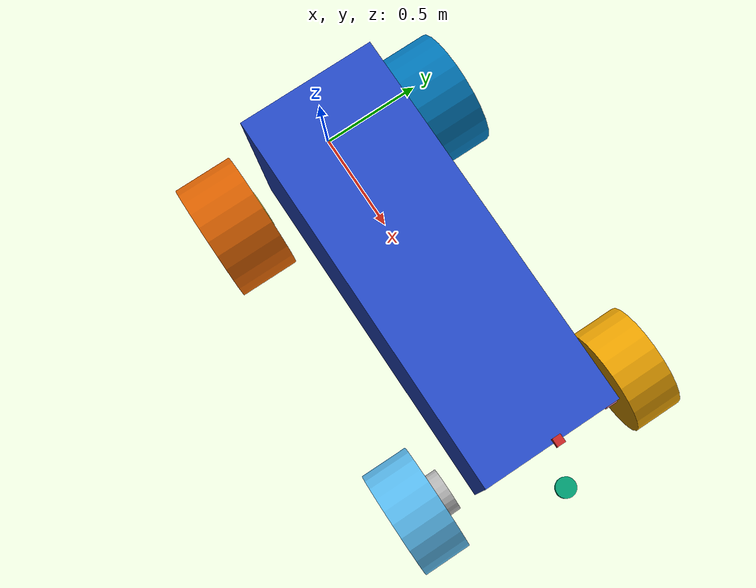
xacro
<?xml version="1.0"?>
<robot xmlns:xacro="http://www.ros.org/wiki/xacro" name="basic_laser_pig">

    <!-- Degree-to-radian conversions -->
    <xacro:property name="degrees_30" value="0.523598776"/>
    <xacro:property name="degrees_45" value="0.785398163"/>
    <xacro:property name="degrees_90" value="1.57079633"/>
    <xacro:property name="degrees_180" value="3.14159265"/>

    <!-- vehiclur velocity properties -->
    <xacro:property name="steering_speed" value="1.0472"/> <!-- units of rad/s -->
    <xacro:property name="steering_max_angle" value="1.0"/> <!-- units of rad, needs to be 30 degreees -->
    <xacro:property name="steering_min_angle" value="-1.0"/> <!-- units of rad, needs to be 30 degrees -->
    <xacro:property name="traverse_max_speed" value="4.785"/> <!-- units of m/s 4.785-->

    <!-- Inertia Generator -->
    <xacro:macro name="default_inertial" params="mass">
        <inertial>
            <mass value="${mass}" />
            <inertia ixx="1.0" ixy="0.0" ixz="0.0" iyy="1.0" iyz="0.0" izz="1.0" />
        </inertial>
    </xacro:macro>

    <!-- Basic Geometry of Body -->
    <xacro:property name="body_length" value="1.91" />
    <xacro:property name="body_width" value="0.680618" />
    <xacro:property name="body_height" value="1.065022" />
    <xacro:property name="body_mass" value="20.3"/>

    <!-- Front Wheel Properties -->
    <xacro:property name="front_wheel_width" value=".254" />
    <xacro:property name="front_wheel_diameter" value="0.572" />
    <xacro:property name="front_wheel_mass" value="20"/>

    <!-- Steering Link Properties -->
    <xacro:property name="steering_width" value="${front_wheel_width/4}" />
    <xacro:property name="steering_diameter" value="${front_wheel_diameter/5}" />
    <xacro:property name="steering_mass" value="2"/>

    <!-- Rear Wheel Properties -->
    <xacro:property name="rear_wheel_width" value="${front_wheel_width+steering_width}" />
    <xacro:property name="rear_wheel_diameter" value="0.635" />
    <xacro:property name="rear_wheel_mass" value="22.8"/>

    <!-- Camera Properties -->
    <xacro:property name="camera_link" value="0.04"/>

    <!-- Testing Laser link xacro -->
    <xacro:include filename="$(find little_pig_description)/urdf/basic_laser_pig.gazebo" />

    <!-- Dummy Base Link -->
    <link name="base_link" />

    <!-- Actual Base Link -->
    <link name="chassis">
        <visual>
            <origin xyz="${(body_length/2) - 0.1} 0.0 0.0" rpy="0.0 0.0 0.0"/>
            <geometry>
                <box size="${body_length} ${body_width} ${body_height}"/>
            </geometry>
            <material name="blue" />
        </visual>

        <collision>
            <origin xyz="${(body_length/2) - 0.1} 0.0 0.0" rpy="0.0 0.0 0.0"/>
            <geometry>
                <box size="${body_length} ${body_width} ${body_height}"/>
            </geometry>
        </collision>

        <xacro:default_inertial mass="${body_mass}"/>
    </link>

    <joint name="base_link_joint" type="fixed">
        <origin xyz="0 0 0.05" rpy="0 0 0" />
        <parent link="base_link" />
        <child link="chassis" />
    </joint>

    <!-- Front Laser -->
    <joint name="front_laser_joint" type="fixed">
      <axis xyz="0 0 0" />
      <origin xyz="${(body_length) + 0.1} 0.0 0.0" rpy="0 0 ${degrees_180}"/> <!-- Was reversed in real world -->
      <parent link="chassis"/>
      <child link="front_laser_link"/>
    </joint>

    <link name="front_laser_link">
      <collision>
        <origin xyz="0 0 0" rpy="0 0 0"/>
        <geometry>
          <cylinder radius=".05" length="0.04"/>
        </geometry>
      </collision>

      <visual>
        <origin xyz="0 0 0" rpy="0 0 0"/>
        <geometry>
          <cylinder radius=".05" length="0.04"/>
        </geometry>
      </visual>

      <inertial>
        <mass value="1e-5" />
        <origin xyz="0 0 0" rpy="0 0 0"/>
        <inertia ixx="1e-6" ixy="0" ixz="0" iyy="1e-6" iyz="0" izz="1e-6" />
      </inertial>
    </link>

    <!-- Rear Laser -->
    <joint name="rear_laser_joint" type="fixed">
      <axis xyz="0 0 0" />
      <origin xyz="-0.15 0.0 0.0" rpy="0 0 ${degrees_180}"/> <!-- Was reversed in real world -->
      <parent link="chassis"/>
      <child link="rear_laser_link"/>
    </joint>

    <link name="rear_laser_link">
      <collision>
        <origin xyz="0 0 0" rpy="0 0 0"/>
        <geometry>
          <cylinder radius=".05" length="0.04"/>
        </geometry>
      </collision>

      <visual>
        <origin xyz="0 0 0" rpy="0 0 0"/>
        <geometry>
          <cylinder radius=".05" length="0.04"/>
        </geometry>
      </visual>

      <inertial>
        <mass value="1e-5" />
        <origin xyz="0 0 0" rpy="0 0 0"/>
        <inertia ixx="1e-6" ixy="0" ixz="0" iyy="1e-6" iyz="0" izz="1e-6" />
      </inertial>
    </link>

    <!-- Camera -->
    <joint name="camera_link_joint" type="fixed">
      <axis xyz="0 1 0" />
      <origin xyz="${(body_length) - 0.1} 0.0 ${(body_height/2 + 0.2)}" rpy="0 0 0"/>
      <parent link="chassis"/>
      <child link="camera_link"/>
    </joint>

    <link name="camera_link">
      <collision>
        <origin xyz="0 0 0" rpy="0 0 0"/>
        <geometry>
        <box size="${camera_link} ${camera_link} ${camera_link}"/>
        </geometry>
      </collision>

      <visual>
        <origin xyz="0 0 0" rpy="0 0 0"/>
        <geometry>
        <box size="${camera_link} ${camera_link} ${camera_link}"/>
        </geometry>
        <material name="red"/>
      </visual>

      <inertial>
        <mass value="1e-5" />
        <origin xyz="0 0 0" rpy="0 0 0"/>
        <inertia ixx="1e-6" ixy="0" ixz="0" iyy="1e-6" iyz="0" izz="1e-6" />
      </inertial>
    </link>

    <!-- IMU -->
    <joint name="imu_joint" type="fixed">
        <axis xyz="1 0 0 "/>
        <origin xyz="0 0 0.19"/>
        <parent link ="chassis"/>
        <child link ="imu_link"/>
    </joint>

    <link name="imu_link">
        <inertial>
            <mass value="0.001"/>
            <origin rpy="0 0 0" xyz="0 0 0"/>
            <inertia ixx="0.0001" ixy="0" ixz="0" iyy="0.000001" iyz="0" izz="0.0001"/>
        </inertial>

        <visual>
            <origin rpy="0 0 0" xyz="0 0 0"/>
            <geometry>
            <box size="0.001 0.001 0.001"/>
            </geometry>
        </visual>

        <collision>
            <origin rpy="0 0 0" xyz="0 0 0"/>
            <geometry>
            <box size=".001 .001 .001"/>
            </geometry>
        </collision>
	</link>

    <!-- Steering Macro -->
    <xacro:macro name="steering_link" params="prefix reflect">

        <link name="${prefix}_steering_link">
            <visual>
                <origin xyz="0.0 0.0 0.0" rpy="${degrees_90} 0.0 0.0"/>
                <geometry>
                    <cylinder radius="${steering_diameter}" length="${steering_width}"/>
                </geometry>
            </visual>

            <collision>
                <origin xyz="0.0 0.0 0.0" rpy="${degrees_90} 0.0 0.0"/>
                <geometry>
                    <cylinder radius="${steering_diameter}" length="${steering_width}"/>
                </geometry>
            </collision>

            <xacro:default_inertial mass="${steering_mass}"/>
        </link>

        <joint name="${prefix}_steering_joint" type="revolute">
            <parent link="chassis"/>
            <child link="${prefix}_steering_link"/>
            <axis xyz="0.0 0.0 0.1"/>
            <origin xyz="${(body_length)- 0.2} ${(body_width / 2 + steering_width / 2 + 0.1) * reflect} ${-(body_height/2) + 0.1}" rpy="0.0 0.0 0.0"/>
            <limit lower="${steering_min_angle}" upper="${steering_max_angle}" effort="100000.00" velocity="${steering_speed}"/>
            <!-- effort needs to be very high so we are not constrained by the environment-->
        </joint>

        <!-- The Transmission -->
        <transmission name="${prefix}_steering_link_trans">
            <type>transmission_interface/SimpleTransmission</type>

            <joint name="${prefix}_steering_joint">
                <hardwareInterface>hardware_interface/PositionJointInterface</hardwareInterface>
            </joint>

            <actuator name="${prefix}_steering_link_motor">
                <hardwareInterface>hardware_interface/PositionJointInterface</hardwareInterface>
                <mechanicalReduction>1</mechanicalReduction>
            </actuator>
        </transmission>

    </xacro:macro>

    <!-- Front Wheel Macro -->
    <xacro:macro name="front_wheel_link" params="prefix reflect">

        <link name="${prefix}_front_wheel">
            <visual>
                <origin xyz="0.0 0.0 0.0" rpy="${degrees_90} 0.0 0.0"/>
                <geometry>
                    <cylinder radius="${front_wheel_diameter/2}" length="${front_wheel_width}"/>
                </geometry>
            </visual>

            <collision>
                <origin xyz="0.0 0.0 0.0" rpy="${degrees_90} 0.0 0.0"/>

                <geometry>
                    <cylinder radius="${front_wheel_diameter/2}" length="0.02"/>
                </geometry>

                <surface>
                    <friction>
                        <torsional>
                            <coefficient>2.0</coefficient>
                            <surface_radius>.3025</surface_radius>
                            <use_patch_radius>false</use_patch_radius>
                            <ode>
                                <slip>0.0</slip>
                            </ode>
                        </torsional>

                        <ode>
                            <mu>70000.00</mu>
                            <mu2>70000.00</mu2>
                            <fdir1>1.00000 0.00000 0.00000</fdir1>
                            <slip1>0.00000</slip1>
                            <slip2>0.00000</slip2>
                        </ode>
                    </friction>

                    <contact>
                        <ode>
                            <min_depth>0.4025</min_depth>
                        </ode>
                    </contact>
                </surface>
            </collision>

            <xacro:default_inertial mass="${front_wheel_mass}"/>
        </link>

        <joint name="${prefix}_front_axle" type="continuous">
            <parent link="${prefix}_steering_link"/>
            <child link="${prefix}_front_wheel"/>
            <axis xyz="0.0 0.1 0.0"/>
            <origin xyz="0 ${(front_wheel_width/2 + steering_width/2) * reflect} 0"/>
            <limit effort="100000.00" velocity="${traverse_max_speed * 2 / front_wheel_diameter}"/> <!-- units of rad/s -->
            <!-- effort needs to be very high so we are not constrained by the environment-->
        </joint>

        <!-- The Transmission -->
        <transmission name="${prefix}_front_wheel_trans">
            <type>transmission_interface/SimpleTransmission</type>

            <joint name="${prefix}_front_axle">
                <hardwareInterface>hardware_interface/VelocityJointInterface</hardwareInterface>
            </joint>

            <actuator name="${prefix}_front_wheel_motor">
                <hardwareInterface>hardware_interface/VelocityJointInterface</hardwareInterface>
                <mechanicalReduction>1</mechanicalReduction>
            </actuator>
        </transmission>

    </xacro:macro>

    <!-- Rear Wheel Prismatic Link Macro -->
    <xacro:macro name="rear_wheel_strut_link" params="prefix reflect">

        <link name="${prefix}_rear_wheel_strut">
            <visual>
                <origin xyz="0.0 0.0 0.0" rpy="${degrees_90} 0.0 0.0"/>
                <geometry>
                    <cylinder radius="0.1" length="0.02"/>
                </geometry>
            </visual>

            <collision>
                <origin xyz="0.0 0.0 0.0" rpy="${degrees_90} 0.0 0.0"/>
                <geometry>
                    <cylinder radius="0.1" length="0.02"/>
                </geometry>
            </collision>

            <xacro:default_inertial mass="${rear_wheel_mass}"/>
        </link>

        <joint name="${prefix}_rear_strut}" type="prismatic">
            <parent link="chassis"/>
            <child link="${prefix}_rear_wheel_strut"/>
            <axis xyz="0.0 0.0 0.1"/>
            <origin xyz="0.0 ${(body_width/2 + 0.1) * reflect} ${-(body_height/2) + 0.1}"/>
            <limit lower="-0.05" upper="0.05" effort="1000.0" velocity="1.0"/>
            <dynamics damping="2.0" friction="8000.0"/>
        </joint>

        <gazebo reference="${prefix}_rear_strut}">
            <implicitSpringDamper>true</implicitSpringDamper>
        </gazebo>
    </xacro:macro>

    <!-- Rear Wheel Macro -->
    <xacro:macro name="rear_wheel_link" params="prefix reflect">

        <link name="${prefix}_rear_wheel">
            <visual>
                <origin xyz="0.0 0.0 0.0" rpy="${degrees_90} 0.0 0.0"/>
                <geometry>
                    <cylinder radius="${rear_wheel_diameter/2}" length="${rear_wheel_width}"/>
                </geometry>
            </visual>

            <collision>
                <origin xyz="0.0 0.0 0.0" rpy="${degrees_90} 0.0 0.0"/>
                <geometry>
                    <cylinder radius="${rear_wheel_diameter/2}" length="0.01"/>
                </geometry>
            </collision>

            <surface>
                <contact>
                    <ode>
                        <min_depth>0.01</min_depth>
                    </ode>
                </contact>

                <friction>
                    <ode>
                        <mu>1</mu>
                        <mu2>1</mu2>
                        <fdir1>1.0 0 0</fdir1>
                    </ode>
                </friction>
            </surface>

            <xacro:default_inertial mass="${rear_wheel_mass}"/>
        </link>

        <joint name="${prefix}_rear_axle" type="continuous">
            <parent link="${prefix}_rear_wheel_strut"/>
            <child link="${prefix}_rear_wheel"/>
            <axis xyz="0.0 0.1 0.0"/>
            <origin xyz="0.0 ${(rear_wheel_width/2) * reflect} 0.0"/>
            <!-- rolling axle -->
        </joint>

        <!-- The Transmission -->
        <transmission name="${prefix}_rear_wheel_trans">
            <type>transmission_interface/SimpleTransmission</type>

            <joint name="${prefix}_rear_axle">
                <!-- rolling axle -->
                <hardwareInterface>hardware_interface/EffortJointInterface</hardwareInterface>
            </joint>

            <actuator name="${prefix}_rear_wheel_motor">
                <!-- rolling axle -->
                <hardwareInterface>hardware_interface/EffortJointInterface</hardwareInterface>
                <mechanicalReduction>1</mechanicalReduction>
            </actuator>
        </transmission>

    </xacro:macro>

    <!-- Ackermann Steering Macro, this is a dummy joint so it has no visual  -->
    <xacro:macro name="ackermann_steering_link">

        <link name="ackermann_steering_link">

            <collision>
                <origin xyz="0.0 0.0 0.0" rpy="${degrees_90} 0.0 0.0"/>
                <geometry>
                    <cylinder radius="${steering_diameter}" length="${steering_width}"/>
                </geometry>
            </collision>

            <xacro:default_inertial mass="0.001"/>
        </link>

        <joint name="ackermann_steering_joint" type="revolute">
            <parent link="chassis"/>
            <child link="ackermann_steering_link"/>
            <axis xyz="0.0 0.0 0.1"/>
            <origin xyz="${(body_length)- 0.2} 0.0 1.0" rpy="0.0 0.0 0.0"/>
            <limit lower="${steering_min_angle}" upper="${steering_max_angle}" effort="100000.00" velocity="${steering_speed}"/>
            <!-- effort needs to be very high so we are not constrained by the environment-->
        </joint>

        <!-- The Transmission -->
        <transmission name="ackermann_steering_link_trans">
            <type>transmission_interface/SimpleTransmission</type>

            <joint name="ackermann_steering_joint">
                <hardwareInterface>hardware_interface/PositionJointInterface</hardwareInterface>
            </joint>

            <actuator name="ackermann_steering_link_motor">
                <hardwareInterface>hardware_interface/PositionJointInterface</hardwareInterface>
                <mechanicalReduction>1</mechanicalReduction>
            </actuator>
        </transmission>

    </xacro:macro>

    <!-- Ackermann Wheel Macro, this is a dummy joint so it has no visual -->
    <xacro:macro name="ackermann_wheel_link">

        <link name="ackermann_rear_wheel">

            <collision>
                <origin xyz="0.0 0.0 0.0" rpy="${degrees_90} 0.0 0.0"/>
                <geometry>
                    <cylinder radius="${front_wheel_diameter/2}" length="0.01"/>
                </geometry>
            </collision>

            <xacro:default_inertial mass="0.001"/>
        </link>

        <joint name="ackermann_rear_axle" type="continuous">
            <parent link="chassis"/>
            <child link="ackermann_rear_wheel"/>
            <axis xyz="0.0 0.1 0.0"/>
            <origin xyz="0.0 0.0 1.0" rpy="0.0 0.0 0.0"/>
            <!-- rolling axle -->
        </joint>

        <!-- The Transmission -->
        <transmission name="ackermann_rear_wheel_trans">
            <type>transmission_interface/SimpleTransmission</type>

            <joint name="ackermann_rear_axle">
                <!-- rolling axle -->
                <hardwareInterface>hardware_interface/EffortJointInterface</hardwareInterface>
            </joint>

            <actuator name="ackermann_rear_wheel_motor">
                <!-- rolling axle -->
                <hardwareInterface>hardware_interface/EffortJointInterface</hardwareInterface>
                <mechanicalReduction>1</mechanicalReduction>
            </actuator>
        </transmission>

    </xacro:macro>

    <xacro:steering_link prefix="left" reflect="1" />
    <xacro:steering_link prefix="right" reflect="-1" />

    <xacro:front_wheel_link prefix="left" reflect="1" />
    <xacro:front_wheel_link prefix="right" reflect="-1" />

    <xacro:rear_wheel_strut_link prefix="left" reflect="1"/>
    <xacro:rear_wheel_strut_link prefix="right" reflect="-1"/>

    <xacro:rear_wheel_link prefix="left" reflect="1" />
    <xacro:rear_wheel_link prefix="right" reflect="-1" />

    <xacro:ackermann_steering_link />
    <xacro:ackermann_wheel_link />

    <!-- Gazebo plugin for ROS Control -->
    <gazebo>

        <plugin name="gazebo_ros_control" filename="libgazebo_ros_control.so">
            <robotSimType>gazebo_ros_control/AckermannRobotHWSim</robotSimType>
        </plugin>

        <plugin name="imu_plugin" filename="libhector_gazebo_ros_imu.so">
            <alwaysOn>true</alwaysOn>
            <bodyName>imu_link</bodyName>
            <topicName>IMU/data</topicName> <!-- Lets solve the namepsace issues -->
            <accelDrift>0.005 0.005 0.005</accelDrift>
            <accelGaussianNoise>0.005 0.005 0.005</accelGaussianNoise>
            <rateDrift>0.005 0.005 0.005</rateDrift>
            <rateGaussianNoise>0.005 0.005 0.005</rateGaussianNoise>
            <headingDrift>0.005 0.005 0.005</headingDrift>
            <gaussianNoise>0.0</gaussianNoise>
            <updateRate>50.0</updateRate>
            <xyzOffsets>0 0 0</xyzOffsets>
            <rpyOffsets>0 0 0</rpyOffsets>
        </plugin>

        <plugin name="gps_plugin" filename="libhector_gazebo_ros_gps.so">
            <alwaysOn>1</alwaysOn>
            <updateRate>40.0</updateRate>
            <frameId>base_link</frameId> <!-- Defaults to world? don't put in a "/"-->
            <bodyName>chassis</bodyName>
            <topicName>GPS/fix</topicName>
            <velocityTopicName>GPS/fix_vel</velocityTopicName>
            <drift>0.0001 0.0001 0.0001</drift>
            <referenceLatitude>37.634047</referenceLatitude>
            <referenceLongitude>-97.269368</referenceLongitude>
            <referenceHeading>0</referenceHeading>
            <referenceAltitude>0</referenceAltitude>
        </plugin>

    </gazebo>

</robot>
